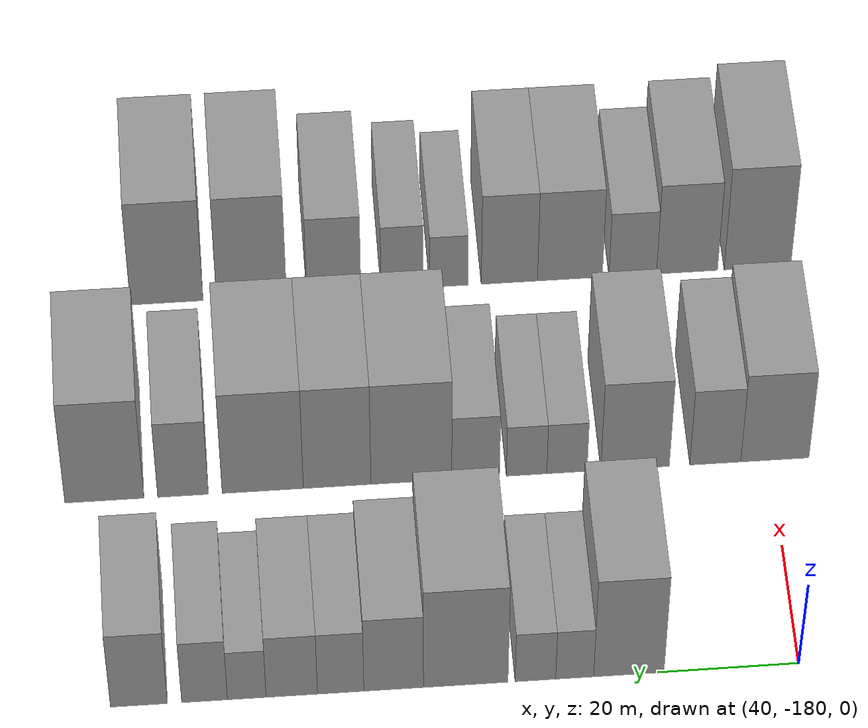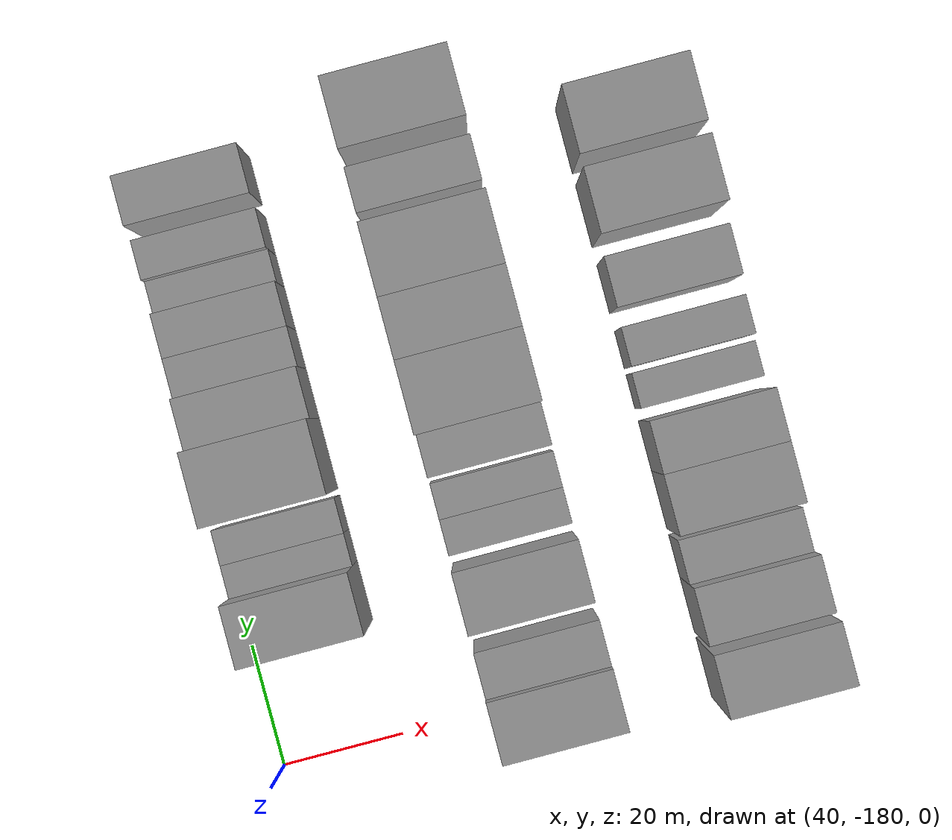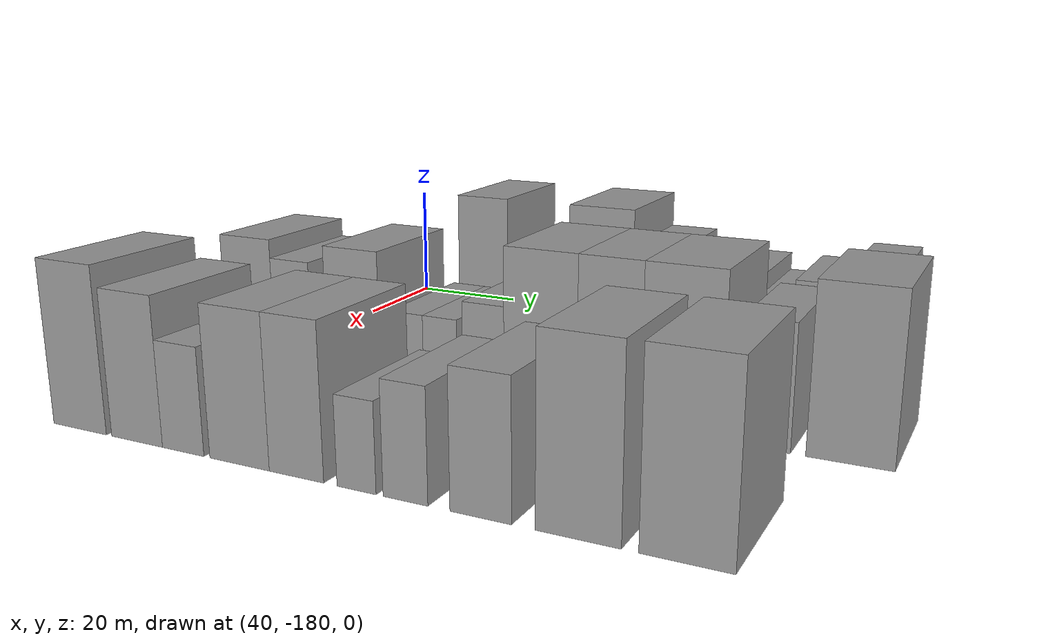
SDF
<sdf version="1.6">
 <world name="default">
  <model name="building_20">
   <static>1</static>
   <pose>50.0000 -155.9220 0 0.000000 0.000000 0.000000</pose>
   <link name="link">
    <pose>0 0 12.00 0 0 0</pose>
    <collision name="collision"><geometry><box><size>20.0000 9.9083 24.0000</size></box></geometry></collision>
    <visual name="visual">
     <cast_shadows>0</cast_shadows>
     <geometry><box><size>20.0000 9.9083 24.0000</size></box></geometry>
     <material>
      <script>
       <uri>model://grey_wall/materials/scripts</uri>
       <uri>model://grey_wall/materials/textures</uri>
       <name>vrc/grey_wall</name>
      </script>
     </material>
    </visual>
   </link>
  </model>
  <model name="building_21">
   <static>1</static>
   <pose>50.0000 -148.2949 0 0.000000 0.000000 0.000000</pose>
   <link name="link">
    <pose>0 0 6.00 0 0 0</pose>
    <collision name="collision"><geometry><box><size>20.0000 5.3460 12.0000</size></box></geometry></collision>
    <visual name="visual">
     <cast_shadows>0</cast_shadows>
     <geometry><box><size>20.0000 5.3460 12.0000</size></box></geometry>
     <material>
      <script>
       <uri>model://grey_wall/materials/scripts</uri>
       <uri>model://grey_wall/materials/textures</uri>
       <name>vrc/grey_wall</name>
      </script>
     </material>
    </visual>
   </link>
  </model>
  <model name="building_22">
   <static>1</static>
   <pose>50.0000 -142.7699 0 0.000000 0.000000 0.000000</pose>
   <link name="link">
    <pose>0 0 6.00 0 0 0</pose>
    <collision name="collision"><geometry><box><size>20.0000 5.7038 12.0000</size></box></geometry></collision>
    <visual name="visual">
     <cast_shadows>0</cast_shadows>
     <geometry><box><size>20.0000 5.7038 12.0000</size></box></geometry>
     <material>
      <script>
       <uri>model://grey_wall/materials/scripts</uri>
       <uri>model://grey_wall/materials/textures</uri>
       <name>vrc/grey_wall</name>
      </script>
     </material>
    </visual>
   </link>
  </model>
  <model name="building_23">
   <static>1</static>
   <pose>50.0000 -132.9776 0 0.000000 0.000000 0.000000</pose>
   <link name="link">
    <pose>0 0 12.00 0 0 0</pose>
    <collision name="collision"><geometry><box><size>20.0000 11.8810 24.0000</size></box></geometry></collision>
    <visual name="visual">
     <cast_shadows>0</cast_shadows>
     <geometry><box><size>20.0000 11.8810 24.0000</size></box></geometry>
     <material>
      <script>
       <uri>model://grey_wall/materials/scripts</uri>
       <uri>model://grey_wall/materials/textures</uri>
       <name>vrc/grey_wall</name>
      </script>
     </material>
    </visual>
   </link>
  </model>
  <model name="building_24">
   <static>1</static>
   <pose>50.0000 -122.8641 0 0.000000 0.000000 0.000000</pose>
   <link name="link">
    <pose>0 0 9.00 0 0 0</pose>
    <collision name="collision"><geometry><box><size>20.0000 8.3459 18.0000</size></box></geometry></collision>
    <visual name="visual">
     <cast_shadows>0</cast_shadows>
     <geometry><box><size>20.0000 8.3459 18.0000</size></box></geometry>
     <material>
      <script>
       <uri>model://grey_wall/materials/scripts</uri>
       <uri>model://grey_wall/materials/textures</uri>
       <name>vrc/grey_wall</name>
      </script>
     </material>
    </visual>
   </link>
  </model>
  <model name="building_25">
   <static>1</static>
   <pose>50.0000 -115.4376 0 0.000000 0.000000 0.000000</pose>
   <link name="link">
    <pose>0 0 7.50 0 0 0</pose>
    <collision name="collision"><geometry><box><size>20.0000 6.5071 15.0000</size></box></geometry></collision>
    <visual name="visual">
     <cast_shadows>0</cast_shadows>
     <geometry><box><size>20.0000 6.5071 15.0000</size></box></geometry>
     <material>
      <script>
       <uri>model://grey_wall/materials/scripts</uri>
       <uri>model://grey_wall/materials/textures</uri>
       <name>vrc/grey_wall</name>
      </script>
     </material>
    </visual>
   </link>
  </model>
  <model name="building_26">
   <static>1</static>
   <pose>50.0000 -108.5881 0 0.000000 0.000000 0.000000</pose>
   <link name="link">
    <pose>0 0 7.50 0 0 0</pose>
    <collision name="collision"><geometry><box><size>20.0000 7.1920 15.0000</size></box></geometry></collision>
    <visual name="visual">
     <cast_shadows>0</cast_shadows>
     <geometry><box><size>20.0000 7.1920 15.0000</size></box></geometry>
     <material>
      <script>
       <uri>model://grey_wall/materials/scripts</uri>
       <uri>model://grey_wall/materials/textures</uri>
       <name>vrc/grey_wall</name>
      </script>
     </material>
    </visual>
   </link>
  </model>
  <model name="building_27">
   <static>1</static>
   <pose>50.0000 -102.2890 0 0.000000 0.000000 0.000000</pose>
   <link name="link">
    <pose>0 0 6.00 0 0 0</pose>
    <collision name="collision"><geometry><box><size>20.0000 5.4062 12.0000</size></box></geometry></collision>
    <visual name="visual">
     <cast_shadows>0</cast_shadows>
     <geometry><box><size>20.0000 5.4062 12.0000</size></box></geometry>
     <material>
      <script>
       <uri>model://grey_wall/materials/scripts</uri>
       <uri>model://grey_wall/materials/textures</uri>
       <name>vrc/grey_wall</name>
      </script>
     </material>
    </visual>
   </link>
  </model>
  <model name="building_28">
   <static>1</static>
   <pose>50.0000 -96.3945 0 0.000000 0.000000 0.000000</pose>
   <link name="link">
    <pose>0 0 7.50 0 0 0</pose>
    <collision name="collision"><geometry><box><size>20.0000 6.3829 15.0000</size></box></geometry></collision>
    <visual name="visual">
     <cast_shadows>0</cast_shadows>
     <geometry><box><size>20.0000 6.3829 15.0000</size></box></geometry>
     <material>
      <script>
       <uri>model://grey_wall/materials/scripts</uri>
       <uri>model://grey_wall/materials/textures</uri>
       <name>vrc/grey_wall</name>
      </script>
     </material>
    </visual>
   </link>
  </model>
  <model name="building_29">
   <static>1</static>
   <pose>50.0000 -87.2331 0 0.000000 0.000000 0.000000</pose>
   <link name="link">
    <pose>0 0 9.00 0 0 0</pose>
    <collision name="collision"><geometry><box><size>20.0000 7.9398 18.0000</size></box></geometry></collision>
    <visual name="visual">
     <cast_shadows>0</cast_shadows>
     <geometry><box><size>20.0000 7.9398 18.0000</size></box></geometry>
     <material>
      <script>
       <uri>model://grey_wall/materials/scripts</uri>
       <uri>model://grey_wall/materials/textures</uri>
       <name>vrc/grey_wall</name>
      </script>
     </material>
    </visual>
   </link>
  </model>
  <model name="building_103">
   <static>1</static>
   <pose>85.0000 -180.6972 0 0.000000 0.000000 0.000000</pose>
   <link name="link">
    <pose>0 0 10.50 0 0 0</pose>
    <collision name="collision"><geometry><box><size>20.0000 9.9502 21.0000</size></box></geometry></collision>
    <visual name="visual">
     <cast_shadows>0</cast_shadows>
     <geometry><box><size>20.0000 9.9502 21.0000</size></box></geometry>
     <material>
      <script>
       <uri>model://grey_wall/materials/scripts</uri>
       <uri>model://grey_wall/materials/textures</uri>
       <name>vrc/grey_wall</name>
      </script>
     </material>
    </visual>
   </link>
  </model>
  <model name="building_104">
   <static>1</static>
   <pose>85.0000 -172.0130 0 0.000000 0.000000 0.000000</pose>
   <link name="link">
    <pose>0 0 9.00 0 0 0</pose>
    <collision name="collision"><geometry><box><size>20.0000 7.4181 18.0000</size></box></geometry></collision>
    <visual name="visual">
     <cast_shadows>0</cast_shadows>
     <geometry><box><size>20.0000 7.4181 18.0000</size></box></geometry>
     <material>
      <script>
       <uri>model://grey_wall/materials/scripts</uri>
       <uri>model://grey_wall/materials/textures</uri>
       <name>vrc/grey_wall</name>
      </script>
     </material>
    </visual>
   </link>
  </model>
  <model name="building_105">
   <static>1</static>
   <pose>85.0000 -160.3200 0 0.000000 0.000000 0.000000</pose>
   <link name="link">
    <pose>0 0 10.50 0 0 0</pose>
    <collision name="collision"><geometry><box><size>20.0000 9.9679 21.0000</size></box></geometry></collision>
    <visual name="visual">
     <cast_shadows>0</cast_shadows>
     <geometry><box><size>20.0000 9.9679 21.0000</size></box></geometry>
     <material>
      <script>
       <uri>model://grey_wall/materials/scripts</uri>
       <uri>model://grey_wall/materials/textures</uri>
       <name>vrc/grey_wall</name>
      </script>
     </material>
    </visual>
   </link>
  </model>
  <model name="building_106">
   <static>1</static>
   <pose>85.0000 -150.4107 0 0.000000 0.000000 0.000000</pose>
   <link name="link">
    <pose>0 0 6.00 0 0 0</pose>
    <collision name="collision"><geometry><box><size>20.0000 5.8508 12.0000</size></box></geometry></collision>
    <visual name="visual">
     <cast_shadows>0</cast_shadows>
     <geometry><box><size>20.0000 5.8508 12.0000</size></box></geometry>
     <material>
      <script>
       <uri>model://grey_wall/materials/scripts</uri>
       <uri>model://grey_wall/materials/textures</uri>
       <name>vrc/grey_wall</name>
      </script>
     </material>
    </visual>
   </link>
  </model>
  <model name="building_107">
   <static>1</static>
   <pose>85.0000 -144.5502 0 0.000000 0.000000 0.000000</pose>
   <link name="link">
    <pose>0 0 6.00 0 0 0</pose>
    <collision name="collision"><geometry><box><size>20.0000 5.8700 12.0000</size></box></geometry></collision>
    <visual name="visual">
     <cast_shadows>0</cast_shadows>
     <geometry><box><size>20.0000 5.8700 12.0000</size></box></geometry>
     <material>
      <script>
       <uri>model://grey_wall/materials/scripts</uri>
       <uri>model://grey_wall/materials/textures</uri>
       <name>vrc/grey_wall</name>
      </script>
     </material>
    </visual>
   </link>
  </model>
  <model name="building_108">
   <static>1</static>
   <pose>85.0000 -137.1453 0 0.000000 0.000000 0.000000</pose>
   <link name="link">
    <pose>0 0 7.50 0 0 0</pose>
    <collision name="collision"><geometry><box><size>20.0000 6.9399 15.0000</size></box></geometry></collision>
    <visual name="visual">
     <cast_shadows>0</cast_shadows>
     <geometry><box><size>20.0000 6.9399 15.0000</size></box></geometry>
     <material>
      <script>
       <uri>model://grey_wall/materials/scripts</uri>
       <uri>model://grey_wall/materials/textures</uri>
       <name>vrc/grey_wall</name>
      </script>
     </material>
    </visual>
   </link>
  </model>
  <model name="building_109">
   <static>1</static>
   <pose>85.0000 -127.8281 0 0.000000 0.000000 0.000000</pose>
   <link name="link">
    <pose>0 0 12.00 0 0 0</pose>
    <collision name="collision"><geometry><box><size>20.0000 11.6945 24.0000</size></box></geometry></collision>
    <visual name="visual">
     <cast_shadows>0</cast_shadows>
     <geometry><box><size>20.0000 11.6945 24.0000</size></box></geometry>
     <material>
      <script>
       <uri>model://grey_wall/materials/scripts</uri>
       <uri>model://grey_wall/materials/textures</uri>
       <name>vrc/grey_wall</name>
      </script>
     </material>
    </visual>
   </link>
  </model>
  <model name="building_110">
   <static>1</static>
   <pose>85.0000 -117.0891 0 0.000000 0.000000 0.000000</pose>
   <link name="link">
    <pose>0 0 12.00 0 0 0</pose>
    <collision name="collision"><geometry><box><size>20.0000 9.7834 24.0000</size></box></geometry></collision>
    <visual name="visual">
     <cast_shadows>0</cast_shadows>
     <geometry><box><size>20.0000 9.7834 24.0000</size></box></geometry>
     <material>
      <script>
       <uri>model://grey_wall/materials/scripts</uri>
       <uri>model://grey_wall/materials/textures</uri>
       <name>vrc/grey_wall</name>
      </script>
     </material>
    </visual>
   </link>
  </model>
  <model name="building_111">
   <static>1</static>
   <pose>85.0000 -106.3366 0 0.000000 0.000000 0.000000</pose>
   <link name="link">
    <pose>0 0 12.00 0 0 0</pose>
    <collision name="collision"><geometry><box><size>20.0000 11.7218 24.0000</size></box></geometry></collision>
    <visual name="visual">
     <cast_shadows>0</cast_shadows>
     <geometry><box><size>20.0000 11.7218 24.0000</size></box></geometry>
     <material>
      <script>
       <uri>model://grey_wall/materials/scripts</uri>
       <uri>model://grey_wall/materials/textures</uri>
       <name>vrc/grey_wall</name>
      </script>
     </material>
    </visual>
   </link>
  </model>
  <model name="building_112">
   <static>1</static>
   <pose>85.0000 -94.8244 0 0.000000 0.000000 0.000000</pose>
   <link name="link">
    <pose>0 0 9.00 0 0 0</pose>
    <collision name="collision"><geometry><box><size>20.0000 7.3027 18.0000</size></box></geometry></collision>
    <visual name="visual">
     <cast_shadows>0</cast_shadows>
     <geometry><box><size>20.0000 7.3027 18.0000</size></box></geometry>
     <material>
      <script>
       <uri>model://grey_wall/materials/scripts</uri>
       <uri>model://grey_wall/materials/textures</uri>
       <name>vrc/grey_wall</name>
      </script>
     </material>
    </visual>
   </link>
  </model>
  <model name="building_113">
   <static>1</static>
   <pose>85.0000 -83.4842 0 0.000000 0.000000 0.000000</pose>
   <link name="link">
    <pose>0 0 12.00 0 0 0</pose>
    <collision name="collision"><geometry><box><size>20.0000 11.3776 24.0000</size></box></geometry></collision>
    <visual name="visual">
     <cast_shadows>0</cast_shadows>
     <geometry><box><size>20.0000 11.3776 24.0000</size></box></geometry>
     <material>
      <script>
       <uri>model://grey_wall/materials/scripts</uri>
       <uri>model://grey_wall/materials/textures</uri>
       <name>vrc/grey_wall</name>
      </script>
     </material>
    </visual>
   </link>
  </model>
  <model name="building_189">
   <static>1</static>
   <pose>120.0000 -182.2483 0 0.000000 0.000000 0.000000</pose>
   <link name="link">
    <pose>0 0 12.00 0 0 0</pose>
    <collision name="collision"><geometry><box><size>20.0000 10.0229 24.0000</size></box></geometry></collision>
    <visual name="visual">
     <cast_shadows>0</cast_shadows>
     <geometry><box><size>20.0000 10.0229 24.0000</size></box></geometry>
     <material>
      <script>
       <uri>model://grey_wall/materials/scripts</uri>
       <uri>model://grey_wall/materials/textures</uri>
       <name>vrc/grey_wall</name>
      </script>
     </material>
    </visual>
   </link>
  </model>
  <model name="building_190">
   <static>1</static>
   <pose>120.0000 -171.6514 0 0.000000 0.000000 0.000000</pose>
   <link name="link">
    <pose>0 0 10.50 0 0 0</pose>
    <collision name="collision"><geometry><box><size>20.0000 9.1709 21.0000</size></box></geometry></collision>
    <visual name="visual">
     <cast_shadows>0</cast_shadows>
     <geometry><box><size>20.0000 9.1709 21.0000</size></box></geometry>
     <material>
      <script>
       <uri>model://grey_wall/materials/scripts</uri>
       <uri>model://grey_wall/materials/textures</uri>
       <name>vrc/grey_wall</name>
      </script>
     </material>
    </visual>
   </link>
  </model>
  <model name="building_191">
   <static>1</static>
   <pose>120.0000 -163.4932 0 0.000000 0.000000 0.000000</pose>
   <link name="link">
    <pose>0 0 7.50 0 0 0</pose>
    <collision name="collision"><geometry><box><size>20.0000 7.1453 15.0000</size></box></geometry></collision>
    <visual name="visual">
     <cast_shadows>0</cast_shadows>
     <geometry><box><size>20.0000 7.1453 15.0000</size></box></geometry>
     <material>
      <script>
       <uri>model://grey_wall/materials/scripts</uri>
       <uri>model://grey_wall/materials/textures</uri>
       <name>vrc/grey_wall</name>
      </script>
     </material>
    </visual>
   </link>
  </model>
  <model name="building_192">
   <static>1</static>
   <pose>120.0000 -154.0620 0 0.000000 0.000000 0.000000</pose>
   <link name="link">
    <pose>0 0 10.50 0 0 0</pose>
    <collision name="collision"><geometry><box><size>20.0000 9.7171 21.0000</size></box></geometry></collision>
    <visual name="visual">
     <cast_shadows>0</cast_shadows>
     <geometry><box><size>20.0000 9.7171 21.0000</size></box></geometry>
     <material>
      <script>
       <uri>model://grey_wall/materials/scripts</uri>
       <uri>model://grey_wall/materials/textures</uri>
       <name>vrc/grey_wall</name>
      </script>
     </material>
    </visual>
   </link>
  </model>
  <model name="building_193">
   <static>1</static>
   <pose>120.0000 -144.9900 0 0.000000 0.000000 0.000000</pose>
   <link name="link">
    <pose>0 0 10.50 0 0 0</pose>
    <collision name="collision"><geometry><box><size>20.0000 8.4270 21.0000</size></box></geometry></collision>
    <visual name="visual">
     <cast_shadows>0</cast_shadows>
     <geometry><box><size>20.0000 8.4270 21.0000</size></box></geometry>
     <material>
      <script>
       <uri>model://grey_wall/materials/scripts</uri>
       <uri>model://grey_wall/materials/textures</uri>
       <name>vrc/grey_wall</name>
      </script>
     </material>
    </visual>
   </link>
  </model>
  <model name="building_194">
   <static>1</static>
   <pose>120.0000 -135.9140 0 0.000000 0.000000 0.000000</pose>
   <link name="link">
    <pose>0 0 6.00 0 0 0</pose>
    <collision name="collision"><geometry><box><size>20.0000 5.7248 12.0000</size></box></geometry></collision>
    <visual name="visual">
     <cast_shadows>0</cast_shadows>
     <geometry><box><size>20.0000 5.7248 12.0000</size></box></geometry>
     <material>
      <script>
       <uri>model://grey_wall/materials/scripts</uri>
       <uri>model://grey_wall/materials/textures</uri>
       <name>vrc/grey_wall</name>
      </script>
     </material>
    </visual>
   </link>
  </model>
  <model name="building_195">
   <static>1</static>
   <pose>120.0000 -128.9105 0 0.000000 0.000000 0.000000</pose>
   <link name="link">
    <pose>0 0 7.50 0 0 0</pose>
    <collision name="collision"><geometry><box><size>20.0000 6.2823 15.0000</size></box></geometry></collision>
    <visual name="visual">
     <cast_shadows>0</cast_shadows>
     <geometry><box><size>20.0000 6.2823 15.0000</size></box></geometry>
     <material>
      <script>
       <uri>model://grey_wall/materials/scripts</uri>
       <uri>model://grey_wall/materials/textures</uri>
       <name>vrc/grey_wall</name>
      </script>
     </material>
    </visual>
   </link>
  </model>
  <model name="building_196">
   <static>1</static>
   <pose>120.0000 -118.7178 0 0.000000 0.000000 0.000000</pose>
   <link name="link">
    <pose>0 0 9.00 0 0 0</pose>
    <collision name="collision"><geometry><box><size>20.0000 8.1029 18.0000</size></box></geometry></collision>
    <visual name="visual">
     <cast_shadows>0</cast_shadows>
     <geometry><box><size>20.0000 8.1029 18.0000</size></box></geometry>
     <material>
      <script>
       <uri>model://grey_wall/materials/scripts</uri>
       <uri>model://grey_wall/materials/textures</uri>
       <name>vrc/grey_wall</name>
      </script>
     </material>
    </visual>
   </link>
  </model>
  <model name="building_197">
   <static>1</static>
   <pose>120.0000 -106.4503 0 0.000000 0.000000 0.000000</pose>
   <link name="link">
    <pose>0 0 12.00 0 0 0</pose>
    <collision name="collision"><geometry><box><size>20.0000 10.4323 24.0000</size></box></geometry></collision>
    <visual name="visual">
     <cast_shadows>0</cast_shadows>
     <geometry><box><size>20.0000 10.4323 24.0000</size></box></geometry>
     <material>
      <script>
       <uri>model://grey_wall/materials/scripts</uri>
       <uri>model://grey_wall/materials/textures</uri>
       <name>vrc/grey_wall</name>
      </script>
     </material>
    </visual>
   </link>
  </model>
  <model name="building_198">
   <static>1</static>
   <pose>120.0000 -93.8300 0 0.000000 0.000000 0.000000</pose>
   <link name="link">
    <pose>0 0 12.00 0 0 0</pose>
    <collision name="collision"><geometry><box><size>20.0000 10.8082 24.0000</size></box></geometry></collision>
    <visual name="visual">
     <cast_shadows>0</cast_shadows>
     <geometry><box><size>20.0000 10.8082 24.0000</size></box></geometry>
     <material>
      <script>
       <uri>model://grey_wall/materials/scripts</uri>
       <uri>model://grey_wall/materials/textures</uri>
       <name>vrc/grey_wall</name>
      </script>
     </material>
    </visual>
   </link>
  </model>
 </world>
</sdf>
